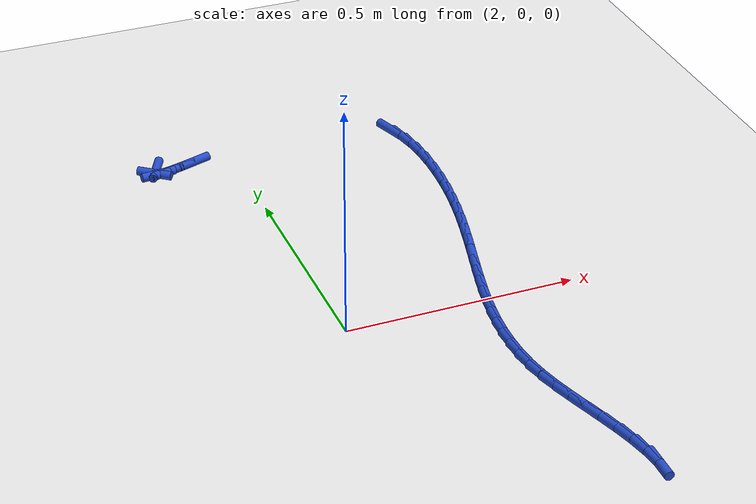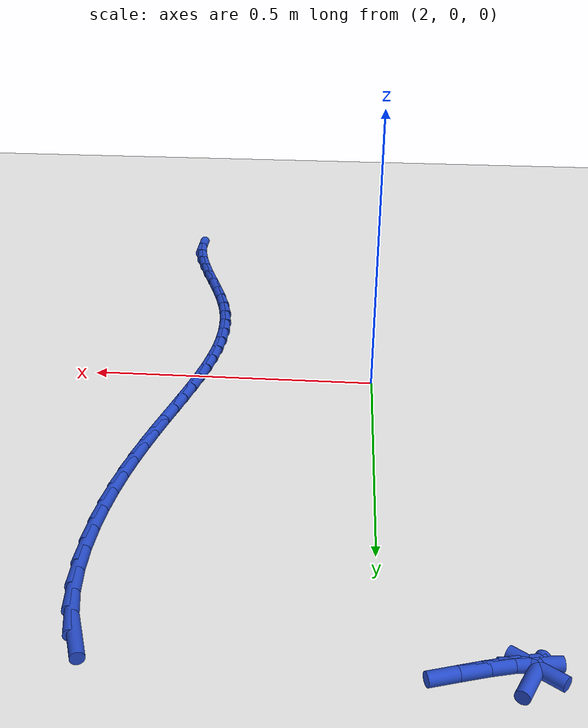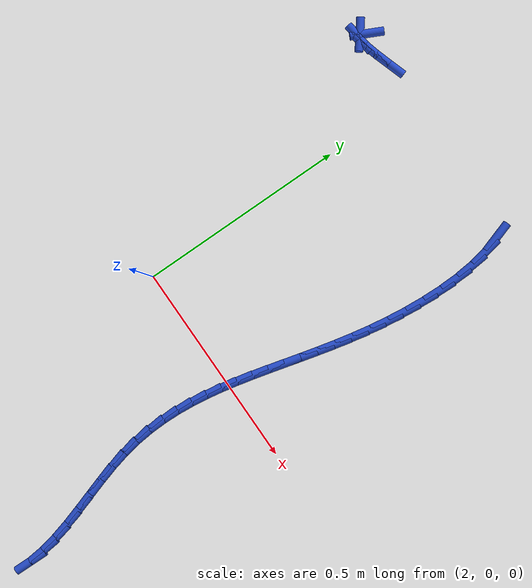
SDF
<sdf version="1.6">
 <world name="default">
  <model name="ground_plane">
   <static>1</static>
   <link name="link">
    <collision name="collision">
     <geometry><plane><normal>0 0 1</normal><size>100 100</size></plane></geometry>
     <surface><friction><ode><mu>100</mu><mu2>50</mu2></ode></friction></surface>
    </collision>
    <visual name="visual">
     <cast_shadows>0</cast_shadows>
     <geometry><plane><normal>0 0 1</normal><size>100 100</size></plane></geometry>
     <material>
      <script><uri>file://media/materials/scripts/gazebo.material</uri><name>Gazebo/WhiteGlow</name></script>
     </material>
    </visual>
   </link>
  </model>
  <model name="line">
   <link name="link_87">
    <pose>1.8174917654166045 0.7290633877061218 0.01 0 1.57 1.1160958172371516</pose>
    <collision name="collision">
     <geometry><cylinder><radius>0.01</radius><length>0.08</length></cylinder></geometry>
    </collision>
    <visual name="visual">
     <material>
      <script><name>Gazebo/Blue</name><uri>file://media/materials/scripts/gazebo.material</uri></script>
     </material>
     <geometry><cylinder><radius>0.01</radius><length>0.08</length></cylinder></geometry>
    </visual>
   </link>
   <link name="link_88">
    <pose>1.8102940030587178 0.7143399917708112 0.01 0 1.57 -0.6568678774520541</pose>
    <collision name="collision">
     <geometry><cylinder><radius>0.01</radius><length>0.08</length></cylinder></geometry>
    </collision>
    <visual name="visual">
     <material>
      <script><name>Gazebo/Blue</name><uri>file://media/materials/scripts/gazebo.material</uri></script>
     </material>
     <geometry><cylinder><radius>0.01</radius><length>0.08</length></cylinder></geometry>
    </visual>
   </link>
   <link name="link_89">
    <pose>1.817458836742531 0.7088152003741723 0.01 0 1.57 0.10959761120638632</pose>
    <collision name="collision">
     <geometry><cylinder><radius>0.01</radius><length>0.08</length></cylinder></geometry>
    </collision>
    <visual name="visual">
     <material>
      <script><name>Gazebo/Blue</name><uri>file://media/materials/scripts/gazebo.material</uri></script>
     </material>
     <geometry><cylinder><radius>0.01</radius><length>0.08</length></cylinder></geometry>
    </visual>
   </link>
   <link name="link_90">
    <pose>1.837280273864114 0.7109963224830775 0.01 0 1.57 0.26325087062807734</pose>
    <collision name="collision">
     <geometry><cylinder><radius>0.01</radius><length>0.08</length></cylinder></geometry>
    </collision>
    <visual name="visual">
     <material>
      <script><name>Gazebo/Blue</name><uri>file://media/materials/scripts/gazebo.material</uri></script>
     </material>
     <geometry><cylinder><radius>0.01</radius><length>0.08</length></cylinder></geometry>
    </visual>
   </link>
   <link name="link_91">
    <pose>1.8678100613052167 0.7192242679112066 0.01 0 1.57 0.3106934483558724</pose>
    <collision name="collision">
     <geometry><cylinder><radius>0.01</radius><length>0.08</length></cylinder></geometry>
    </collision>
    <visual name="visual">
     <material>
      <script><name>Gazebo/Blue</name><uri>file://media/materials/scripts/gazebo.material</uri></script>
     </material>
     <geometry><cylinder><radius>0.01</radius><length>0.08</length></cylinder></geometry>
    </visual>
   </link>
   <link name="link_92">
    <pose>1.907099945947589 0.731839946472239 0.01 0 1.57 0.321303015065137</pose>
    <collision name="collision">
     <geometry><cylinder><radius>0.01</radius><length>0.08</length></cylinder></geometry>
    </collision>
    <visual name="visual">
     <material>
      <script><name>Gazebo/Blue</name><uri>file://media/materials/scripts/gazebo.material</uri></script>
     </material>
     <geometry><cylinder><radius>0.01</radius><length>0.08</length></cylinder></geometry>
    </visual>
   </link>
   <link name="link_103">
    <pose>2.37820056905022 0.706031894812465 0.01 0 1.57 -1.2594872912058233</pose>
    <collision name="collision">
     <geometry><cylinder><radius>0.01</radius><length>0.08</length></cylinder></geometry>
    </collision>
    <visual name="visual">
     <material>
      <script><name>Gazebo/Blue</name><uri>file://media/materials/scripts/gazebo.material</uri></script>
     </material>
     <geometry><cylinder><radius>0.01</radius><length>0.08</length></cylinder></geometry>
    </visual>
   </link>
   <link name="link_104">
    <pose>2.3913084174982644 0.6652953789834605 0.01 0 1.57 -1.3866665857969944</pose>
    <collision name="collision">
     <geometry><cylinder><radius>0.01</radius><length>0.08</length></cylinder></geometry>
    </collision>
    <visual name="visual">
     <material>
      <script><name>Gazebo/Blue</name><uri>file://media/materials/scripts/gazebo.material</uri></script>
     </material>
     <geometry><cylinder><radius>0.01</radius><length>0.08</length></cylinder></geometry>
    </visual>
   </link>
   <link name="link_105">
    <pose>2.399612994810015 0.6207044708858579 0.01 0 1.57 -1.48177491762271</pose>
    <collision name="collision">
     <geometry><cylinder><radius>0.01</radius><length>0.08</length></cylinder></geometry>
    </collision>
    <visual name="visual">
     <material>
      <script><name>Gazebo/Blue</name><uri>file://media/materials/scripts/gazebo.material</uri></script>
     </material>
     <geometry><cylinder><radius>0.01</radius><length>0.08</length></cylinder></geometry>
    </visual>
   </link>
   <link name="link_106">
    <pose>2.403817128185934 0.5736031961635017 0.01 0 1.57 -1.554088611246273</pose>
    <collision name="collision">
     <geometry><cylinder><radius>0.01</radius><length>0.08</length></cylinder></geometry>
    </collision>
    <visual name="visual">
     <material>
      <script><name>Gazebo/Blue</name><uri>file://media/materials/scripts/gazebo.material</uri></script>
     </material>
     <geometry><cylinder><radius>0.01</radius><length>0.08</length></cylinder></geometry>
    </visual>
   </link>
   <link name="link_107">
    <pose>2.404623644826482 0.5253355804602348 0.01 0 1.57 1.5315510353349273</pose>
    <collision name="collision">
     <geometry><cylinder><radius>0.01</radius><length>0.08</length></cylinder></geometry>
    </collision>
    <visual name="visual">
     <material>
      <script><name>Gazebo/Blue</name><uri>file://media/materials/scripts/gazebo.material</uri></script>
     </material>
     <geometry><cylinder><radius>0.01</radius><length>0.08</length></cylinder></geometry>
    </visual>
   </link>
   <link name="link_108">
    <pose>2.4027353719321223 0.47724564941989955 0.01 0 1.57 1.4866097975274881</pose>
    <collision name="collision">
     <geometry><cylinder><radius>0.01</radius><length>0.08</length></cylinder></geometry>
    </collision>
    <visual name="visual">
     <material>
      <script><name>Gazebo/Blue</name><uri>file://media/materials/scripts/gazebo.material</uri></script>
     </material>
     <geometry><cylinder><radius>0.01</radius><length>0.08</length></cylinder></geometry>
    </visual>
   </link>
   <link name="link_109">
    <pose>2.3987858549141072 0.43044265046446334 0.01 0 1.57 1.4466108797536057</pose>
    <collision name="collision">
     <geometry><cylinder><radius>0.01</radius><length>0.08</length></cylinder></geometry>
    </collision>
    <visual name="visual">
     <material>
      <script><name>Gazebo/Blue</name><uri>file://media/materials/scripts/gazebo.material</uri></script>
     </material>
     <geometry><cylinder><radius>0.01</radius><length>0.08</length></cylinder></geometry>
    </visual>
   </link>
   <link name="link_110">
    <pose>2.393120956566663 0.3850609483798666 0.01 0 1.57 1.4108930804090476</pose>
    <collision name="collision">
     <geometry><cylinder><radius>0.01</radius><length>0.08</length></cylinder></geometry>
    </collision>
    <visual name="visual">
     <material>
      <script><name>Gazebo/Blue</name><uri>file://media/materials/scripts/gazebo.material</uri></script>
     </material>
     <geometry><cylinder><radius>0.01</radius><length>0.08</length></cylinder></geometry>
    </visual>
   </link>
   <link name="link_111">
    <pose>2.386011880425168 0.3409819068641846 0.01 0 1.57 1.3800660663910456</pose>
    <collision name="collision">
     <geometry><cylinder><radius>0.01</radius><length>0.08</length></cylinder></geometry>
    </collision>
    <visual name="visual">
     <material>
      <script><name>Gazebo/Blue</name><uri>file://media/materials/scripts/gazebo.material</uri></script>
     </material>
     <geometry><cylinder><radius>0.01</radius><length>0.08</length></cylinder></geometry>
    </visual>
   </link>
   <link name="link_112">
    <pose>2.377729829885865 0.29808688914399467 0.01 0 1.57 1.3546724113541737</pose>
    <collision name="collision">
     <geometry><cylinder><radius>0.01</radius><length>0.08</length></cylinder></geometry>
    </collision>
    <visual name="visual">
     <material>
      <script><name>Gazebo/Blue</name><uri>file://media/materials/scripts/gazebo.material</uri></script>
     </material>
     <geometry><cylinder><radius>0.01</radius><length>0.08</length></cylinder></geometry>
    </visual>
   </link>
   <link name="link_113">
    <pose>2.368546008344998 0.25625725844587643 0.01 0 1.57 1.3351935770044265</pose>
    <collision name="collision">
     <geometry><cylinder><radius>0.01</radius><length>0.08</length></cylinder></geometry>
    </collision>
    <visual name="visual">
     <material>
      <script><name>Gazebo/Blue</name><uri>file://media/materials/scripts/gazebo.material</uri></script>
     </material>
     <geometry><cylinder><radius>0.01</radius><length>0.08</length></cylinder></geometry>
    </visual>
   </link>
   <link name="link_114">
    <pose>2.358731619198805 0.2153743779964068 0.01 0 1.57 1.3220602082245263</pose>
    <collision name="collision">
     <geometry><cylinder><radius>0.01</radius><length>0.08</length></cylinder></geometry>
    </collision>
    <visual name="visual">
     <material>
      <script><name>Gazebo/Blue</name><uri>file://media/materials/scripts/gazebo.material</uri></script>
     </material>
     <geometry><cylinder><radius>0.01</radius><length>0.08</length></cylinder></geometry>
    </visual>
   </link>
   <link name="link_115">
    <pose>2.3485578658435315 0.17531961102216556 0.01 0 1.57 1.3156633051531208</pose>
    <collision name="collision">
     <geometry><cylinder><radius>0.01</radius><length>0.08</length></cylinder></geometry>
    </collision>
    <visual name="visual">
     <material>
      <script><name>Gazebo/Blue</name><uri>file://media/materials/scripts/gazebo.material</uri></script>
     </material>
     <geometry><cylinder><radius>0.01</radius><length>0.08</length></cylinder></geometry>
    </visual>
   </link>
   <link name="link_116">
    <pose>2.33829595167542 0.13597432074973026 0.01 0 1.57 1.3163626610373997</pose>
    <collision name="collision">
     <geometry><cylinder><radius>0.01</radius><length>0.08</length></cylinder></geometry>
    </collision>
    <visual name="visual">
     <material>
      <script><name>Gazebo/Blue</name><uri>file://media/materials/scripts/gazebo.material</uri></script>
     </material>
     <geometry><cylinder><radius>0.01</radius><length>0.08</length></cylinder></geometry>
    </visual>
   </link>
   <link name="link_117">
    <pose>2.3282170800907114 0.09721987040567842 0.01 0 1.57 1.3244889367777382</pose>
    <collision name="collision">
     <geometry><cylinder><radius>0.01</radius><length>0.08</length></cylinder></geometry>
    </collision>
    <visual name="visual">
     <material>
      <script><name>Gazebo/Blue</name><uri>file://media/materials/scripts/gazebo.material</uri></script>
     </material>
     <geometry><cylinder><radius>0.01</radius><length>0.08</length></cylinder></geometry>
    </visual>
   </link>
   <link name="link_118">
    <pose>2.318592454485649 0.05893762321659033 0.01 0 1.57 1.3403357847958324</pose>
    <collision name="collision">
     <geometry><cylinder><radius>0.01</radius><length>0.08</length></cylinder></geometry>
    </collision>
    <visual name="visual">
     <material>
      <script><name>Gazebo/Blue</name><uri>file://media/materials/scripts/gazebo.material</uri></script>
     </material>
     <geometry><cylinder><radius>0.01</radius><length>0.08</length></cylinder></geometry>
    </visual>
   </link>
   <link name="link_119">
    <pose>2.309693278256476 0.021008942409043392 0.01 0 1.57 1.36413864837577</pose>
    <collision name="collision">
     <geometry><cylinder><radius>0.01</radius><length>0.08</length></cylinder></geometry>
    </collision>
    <visual name="visual">
     <material>
      <script><name>Gazebo/Blue</name><uri>file://media/materials/scripts/gazebo.material</uri></script>
     </material>
     <geometry><cylinder><radius>0.01</radius><length>0.08</length></cylinder></geometry>
    </visual>
   </link>
   <link name="link_120">
    <pose>2.3017907547994327 -0.016684808790384094 0.01 0 1.57 1.3960376437807251</pose>
    <collision name="collision">
     <geometry><cylinder><radius>0.01</radius><length>0.08</length></cylinder></geometry>
    </collision>
    <visual name="visual">
     <material>
      <script><name>Gazebo/Blue</name><uri>file://media/materials/scripts/gazebo.material</uri></script>
     </material>
     <geometry><cylinder><radius>0.01</radius><length>0.08</length></cylinder></geometry>
    </visual>
   </link>
   <link name="link_121">
    <pose>2.2951560875107626 -0.05426226715511366 0.01 0 1.57 1.436023962901516</pose>
    <collision name="collision">
     <geometry><cylinder><radius>0.01</radius><length>0.08</length></cylinder></geometry>
    </collision>
    <visual name="visual">
     <material>
      <script><name>Gazebo/Blue</name><uri>file://media/materials/scripts/gazebo.material</uri></script>
     </material>
     <geometry><cylinder><radius>0.01</radius><length>0.08</length></cylinder></geometry>
    </visual>
   </link>
   <link name="link_122">
    <pose>2.2900604797867077 -0.09184206945856803 0.01 0 1.57 1.4838732958816472</pose>
    <collision name="collision">
     <geometry><cylinder><radius>0.01</radius><length>0.08</length></cylinder></geometry>
    </collision>
    <visual name="visual">
     <material>
      <script><name>Gazebo/Blue</name><uri>file://media/materials/scripts/gazebo.material</uri></script>
     </material>
     <geometry><cylinder><radius>0.01</radius><length>0.08</length></cylinder></geometry>
    </visual>
   </link>
   <link name="link_123">
    <pose>2.286775135023512 -0.12954285247416691 0.01 0 1.57 1.5390761921742087</pose>
    <collision name="collision">
     <geometry><cylinder><radius>0.01</radius><length>0.08</length></cylinder></geometry>
    </collision>
    <visual name="visual">
     <material>
      <script><name>Gazebo/Blue</name><uri>file://media/materials/scripts/gazebo.material</uri></script>
     </material>
     <geometry><cylinder><radius>0.01</radius><length>0.08</length></cylinder></geometry>
    </visual>
   </link>
   <link name="link_124">
    <pose>2.285571256617415 -0.16748325297533279 0.01 0 1.57 -1.5408097122815188</pose>
    <collision name="collision">
     <geometry><cylinder><radius>0.01</radius><length>0.08</length></cylinder></geometry>
    </collision>
    <visual name="visual">
     <material>
      <script><name>Gazebo/Blue</name><uri>file://media/materials/scripts/gazebo.material</uri></script>
     </material>
     <geometry><cylinder><radius>0.01</radius><length>0.08</length></cylinder></geometry>
    </visual>
   </link>
   <link name="link_125">
    <pose>2.286720047964662 -0.20578190773548746 0.01 0 1.57 -1.4738066601923003</pose>
    <collision name="collision">
     <geometry><cylinder><radius>0.01</radius><length>0.08</length></cylinder></geometry>
    </collision>
    <visual name="visual">
     <material>
      <script><name>Gazebo/Blue</name><uri>file://media/materials/scripts/gazebo.material</uri></script>
     </material>
     <geometry><cylinder><radius>0.01</radius><length>0.08</length></cylinder></geometry>
    </visual>
   </link>
   <link name="link_126">
    <pose>2.290492712461493 -0.24455745352805344 0.01 0 1.57 -1.4030318139515574</pose>
    <collision name="collision">
     <geometry><cylinder><radius>0.01</radius><length>0.08</length></cylinder></geometry>
    </collision>
    <visual name="visual">
     <material>
      <script><name>Gazebo/Blue</name><uri>file://media/materials/scripts/gazebo.material</uri></script>
     </material>
     <geometry><cylinder><radius>0.01</radius><length>0.08</length></cylinder></geometry>
    </visual>
   </link>
   <link name="link_127">
    <pose>2.2971604535041523 -0.2839285271264505 0.01 0 1.57 -1.3344815896386475</pose>
    <collision name="collision">
     <geometry><cylinder><radius>0.01</radius><length>0.08</length></cylinder></geometry>
    </collision>
    <visual name="visual">
     <material>
      <script><name>Gazebo/Blue</name><uri>file://media/materials/scripts/gazebo.material</uri></script>
     </material>
     <geometry><cylinder><radius>0.01</radius><length>0.08</length></cylinder></geometry>
    </visual>
   </link>
   <link name="link_128">
    <pose>2.3068004881981934 -0.3239595256845751 0.01 0 1.57 -1.2864131666909573</pose>
    <collision name="collision">
     <geometry><cylinder><radius>0.01</radius><length>0.08</length></cylinder></geometry>
    </collision>
    <visual name="visual">
     <material>
      <script><name>Gazebo/Blue</name><uri>file://media/materials/scripts/gazebo.material</uri></script>
     </material>
     <geometry><cylinder><radius>0.01</radius><length>0.08</length></cylinder></geometry>
    </visual>
   </link>
   <link name="link_129">
    <pose>2.318644396198582 -0.3644784015363585 0.01 0 1.57 -1.2610378075531323</pose>
    <collision name="collision">
     <geometry><cylinder><radius>0.01</radius><length>0.08</length></cylinder></geometry>
    </collision>
    <visual name="visual">
     <material>
      <script><name>Gazebo/Blue</name><uri>file://media/materials/scripts/gazebo.material</uri></script>
     </material>
     <geometry><cylinder><radius>0.01</radius><length>0.08</length></cylinder></geometry>
    </visual>
   </link>
   <link name="link_130">
    <pose>2.3316933878036665 -0.40524869449354345 0.01 0 1.57 -1.256562769571706</pose>
    <collision name="collision">
     <geometry><cylinder><radius>0.01</radius><length>0.08</length></cylinder></geometry>
    </collision>
    <visual name="visual">
     <material>
      <script><name>Gazebo/Blue</name><uri>file://media/materials/scripts/gazebo.material</uri></script>
     </material>
     <geometry><cylinder><radius>0.01</radius><length>0.08</length></cylinder></geometry>
    </visual>
   </link>
   <link name="link_131">
    <pose>2.344948668331023 -0.44603394297522125 0.01 0 1.57 -1.2727113004324595</pose>
    <collision name="collision">
     <geometry><cylinder><radius>0.01</radius><length>0.08</length></cylinder></geometry>
    </collision>
    <visual name="visual">
     <material>
      <script><name>Gazebo/Blue</name><uri>file://media/materials/scripts/gazebo.material</uri></script>
     </material>
     <geometry><cylinder><radius>0.01</radius><length>0.08</length></cylinder></geometry>
    </visual>
   </link>
   <link name="link_132">
    <pose>2.3574114430982216 -0.4865976854004799 0.01 0 1.57 -1.310738711112582</pose>
    <collision name="collision">
     <geometry><cylinder><radius>0.01</radius><length>0.08</length></cylinder></geometry>
    </collision>
    <visual name="visual">
     <material>
      <script><name>Gazebo/Blue</name><uri>file://media/materials/scripts/gazebo.material</uri></script>
     </material>
     <geometry><cylinder><radius>0.01</radius><length>0.08</length></cylinder></geometry>
    </visual>
   </link>
   <link name="link_133">
    <pose>2.368082917422837 -0.5267034601884106 0.01 0 1.57 -1.3734224787278184</pose>
    <collision name="collision">
     <geometry><cylinder><radius>0.01</radius><length>0.08</length></cylinder></geometry>
    </collision>
    <visual name="visual">
     <material>
      <script><name>Gazebo/Blue</name><uri>file://media/materials/scripts/gazebo.material</uri></script>
     </material>
     <geometry><cylinder><radius>0.01</radius><length>0.08</length></cylinder></geometry>
    </visual>
   </link>
   <link name="link_134">
    <pose>2.375964296622442 -0.5661148057581038 0.01 0 1.57 -1.4648421881036306</pose>
    <collision name="collision">
     <geometry><cylinder><radius>0.01</radius><length>0.08</length></cylinder></geometry>
    </collision>
    <visual name="visual">
     <material>
      <script><name>Gazebo/Blue</name><uri>file://media/materials/scripts/gazebo.material</uri></script>
     </material>
     <geometry><cylinder><radius>0.01</radius><length>0.08</length></cylinder></geometry>
    </visual>
   </link>
   <link name="link_135">
    <pose>2.3800567860146082 -0.6045952605286503 0.01 0 1.57 1.55216708856055</pose>
    <collision name="collision">
     <geometry><cylinder><radius>0.01</radius><length>0.08</length></cylinder></geometry>
    </collision>
    <visual name="visual">
     <material>
      <script><name>Gazebo/Blue</name><uri>file://media/materials/scripts/gazebo.material</uri></script>
     </material>
     <geometry><cylinder><radius>0.01</radius><length>0.08</length></cylinder></geometry>
    </visual>
   </link>
  </model>
 </world>
</sdf>
